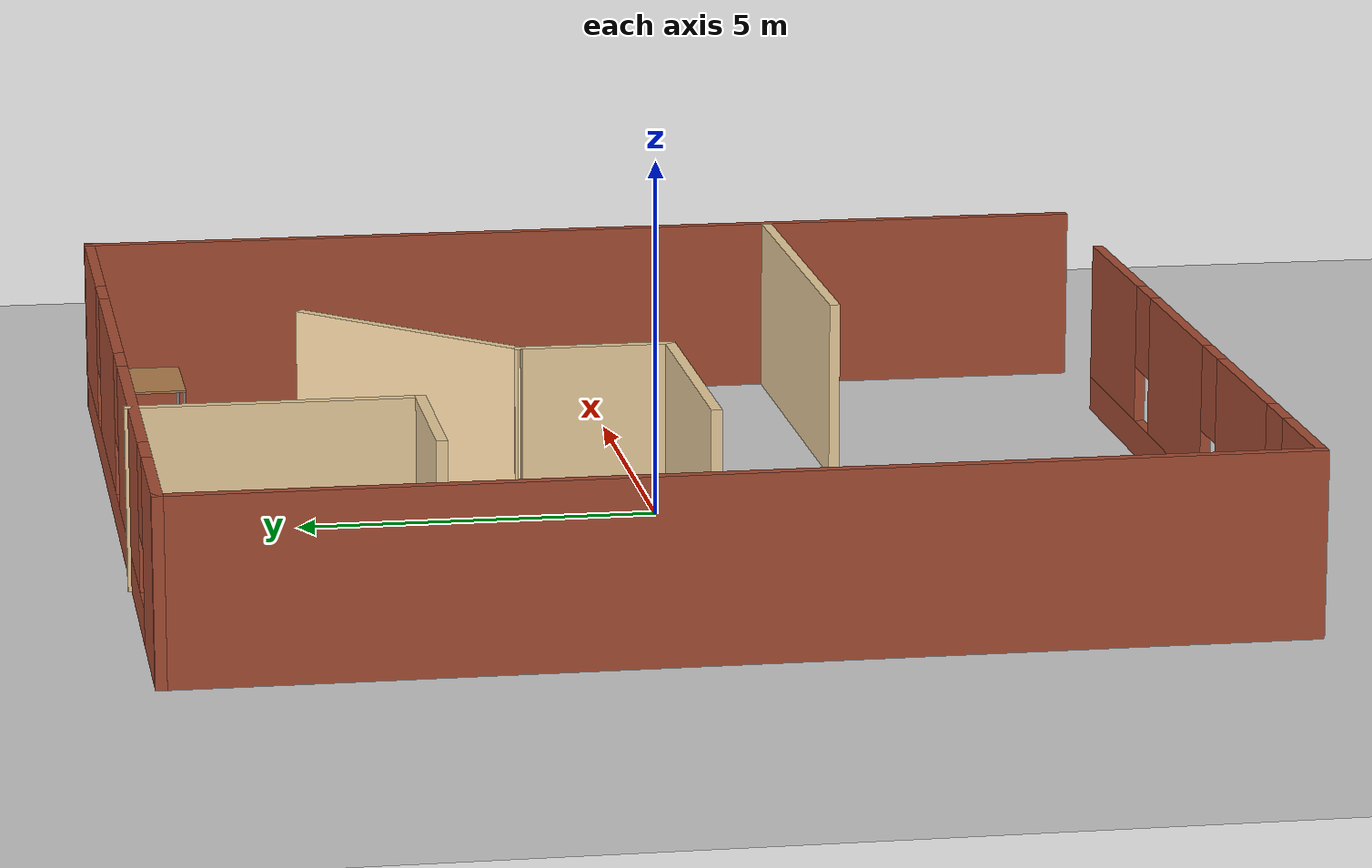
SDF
<sdf version="1.7">
 <world name="default">
  <model name="ground_plane">
   <static>1</static>
   <link name="link">
    <collision name="collision">
     <geometry><plane><normal>0 0 1</normal><size>100 100</size></plane></geometry>
     <surface>
      <contact><collide_bitmask>65535</collide_bitmask></contact>
      <friction><ode><mu>100</mu><mu2>50</mu2></ode></friction>
     </surface>
    </collision>
    <visual name="visual">
     <cast_shadows>0</cast_shadows>
     <geometry><plane><normal>0 0 1</normal><size>100 100</size></plane></geometry>
     <material>
      <script><uri>file://media/materials/scripts/gazebo.material</uri><name>Gazebo/Grey</name></script>
     </material>
    </visual>
   </link>
  </model>
  <model name="gMaze3">
   <link name="Wall_0">
    <pose>0 7.40084 0 0 -0 0</pose>
    <visual name="Wall_0_Visual_0">
     <pose>-6.50945 0 1.25 0 -0 0</pose>
     <geometry><box><size>1.98109 0.15 2.5</size></box></geometry>
     <material>
      <script><uri>file://media/materials/scripts/gazebo.material</uri><name>Gazebo/Bricks</name></script>
      <ambient>1 1 1 1</ambient>
     </material>
     <meta><layer>0</layer></meta>
    </visual>
    <collision name="Wall_0_Collision_0">
     <geometry><box><size>1.98109 0.15 2.5</size></box></geometry>
     <pose>-6.50945 0 1.25 0 -0 0</pose>
    </collision>
    <visual name="Wall_0_Visual_1">
     <pose>0.990545 0 0.25 0 -0 0</pose>
     <geometry><box><size>13.0189 0.15 0.5</size></box></geometry>
     <material>
      <script><uri>file://media/materials/scripts/gazebo.material</uri><name>Gazebo/Bricks</name></script>
      <ambient>1 1 1 1</ambient>
     </material>
     <meta><layer>0</layer></meta>
    </visual>
    <collision name="Wall_0_Collision_1">
     <geometry><box><size>13.0189 0.15 0.5</size></box></geometry>
     <pose>0.990545 0 0.25 0 -0 0</pose>
    </collision>
    <visual name="Wall_0_Visual_2">
     <pose>-2.60363 0 1.5 0 -0 0</pose>
     <geometry><box><size>4.23056 0.15 2</size></box></geometry>
     <material>
      <script><uri>file://media/materials/scripts/gazebo.material</uri><name>Gazebo/Bricks</name></script>
      <ambient>1 1 1 1</ambient>
     </material>
     <meta><layer>0</layer></meta>
    </visual>
    <collision name="Wall_0_Collision_2">
     <geometry><box><size>4.23056 0.15 2</size></box></geometry>
     <pose>-2.60363 0 1.5 0 -0 0</pose>
    </collision>
    <visual name="Wall_0_Visual_3">
     <pose>2.02238 0 1.5 0 -0 0</pose>
     <geometry><box><size>3.42145 0.15 2</size></box></geometry>
     <material>
      <script><uri>file://media/materials/scripts/gazebo.material</uri><name>Gazebo/Bricks</name></script>
      <ambient>1 1 1 1</ambient>
     </material>
     <meta><layer>0</layer></meta>
    </visual>
    <collision name="Wall_0_Collision_3">
     <geometry><box><size>3.42145 0.15 2</size></box></geometry>
     <pose>2.02238 0 1.5 0 -0 0</pose>
    </collision>
    <visual name="Wall_0_Visual_4">
     <pose>6.01655 0 1.5 0 -0 0</pose>
     <geometry><box><size>2.9669 0.15 2</size></box></geometry>
     <material>
      <script><uri>file://media/materials/scripts/gazebo.material</uri><name>Gazebo/Bricks</name></script>
      <ambient>1 1 1 1</ambient>
     </material>
     <meta><layer>0</layer></meta>
    </visual>
    <collision name="Wall_0_Collision_4">
     <geometry><box><size>2.9669 0.15 2</size></box></geometry>
     <pose>6.01655 0 1.5 0 -0 0</pose>
    </collision>
    <visual name="Wall_0_Visual_5">
     <pose>-5.11891 0 1.9 0 -0 0</pose>
     <geometry><box><size>0.8 0.15 1.2</size></box></geometry>
     <material>
      <script><uri>file://media/materials/scripts/gazebo.material</uri><name>Gazebo/Bricks</name></script>
      <ambient>1 1 1 1</ambient>
     </material>
     <meta><layer>0</layer></meta>
    </visual>
    <collision name="Wall_0_Collision_5">
     <geometry><box><size>0.8 0.15 1.2</size></box></geometry>
     <pose>-5.11891 0 1.9 0 -0 0</pose>
    </collision>
    <visual name="Wall_0_Visual_6">
     <pose>-0.088347 0 1.9 0 -0 0</pose>
     <geometry><box><size>0.8 0.15 1.2</size></box></geometry>
     <material>
      <script><uri>file://media/materials/scripts/gazebo.material</uri><name>Gazebo/Bricks</name></script>
      <ambient>1 1 1 1</ambient>
     </material>
     <meta><layer>0</layer></meta>
    </visual>
    <collision name="Wall_0_Collision_6">
     <geometry><box><size>0.8 0.15 1.2</size></box></geometry>
     <pose>-0.088347 0 1.9 0 -0 0</pose>
    </collision>
    <visual name="Wall_0_Visual_7">
     <pose>4.1331 0 1.9 0 -0 0</pose>
     <geometry><box><size>0.8 0.15 1.2</size></box></geometry>
     <material>
      <script><uri>file://media/materials/scripts/gazebo.material</uri><name>Gazebo/Bricks</name></script>
      <ambient>1 1 1 1</ambient>
     </material>
     <meta><layer>0</layer></meta>
    </visual>
    <collision name="Wall_0_Collision_7">
     <geometry><box><size>0.8 0.15 1.2</size></box></geometry>
     <pose>4.1331 0 1.9 0 -0 0</pose>
    </collision>
   </link>
   <link name="Wall_1">
    <collision name="Wall_1_Collision">
     <geometry><box><size>15 0.15 2.5</size></box></geometry>
     <pose>0 0 1.25 0 -0 0</pose>
    </collision>
    <visual name="Wall_1_Visual">
     <pose>0 0 1.25 0 -0 0</pose>
     <geometry><box><size>15 0.15 2.5</size></box></geometry>
     <material>
      <script><uri>file://media/materials/scripts/gazebo.material</uri><name>Gazebo/Bricks</name></script>
      <ambient>1 1 1 1</ambient>
     </material>
     <meta><layer>0</layer></meta>
    </visual>
    <pose>7.40489 -0.024156 0 0 -0 -1.5708</pose>
   </link>
   <link name="Wall_17">
    <collision name="Wall_17_Collision">
     <geometry><box><size>5.75 0.15 2.5</size></box></geometry>
     <pose>0 0 1.25 0 -0 0</pose>
    </collision>
    <visual name="Wall_17_Visual">
     <pose>0 0 1.25 0 -0 0</pose>
     <geometry><box><size>5.75 0.15 2.5</size></box></geometry>
     <material>
      <script><uri>file://media/materials/scripts/gazebo.material</uri><name>Gazebo/Grey</name></script>
      <ambient>0.921569 0.807843 0.615686 1</ambient>
     </material>
     <meta><layer>0</layer></meta>
    </visual>
    <pose>4.59033 -2.84512 0 0 -0 3.14159</pose>
   </link>
   <link name="Wall_19">
    <collision name="Wall_19_Collision">
     <geometry><box><size>4 0.15 2.5</size></box></geometry>
     <pose>0 0 1.25 0 -0 0</pose>
    </collision>
    <visual name="Wall_19_Visual">
     <pose>0 0 1.25 0 -0 0</pose>
     <geometry><box><size>4 0.15 2.5</size></box></geometry>
     <material>
      <script><uri>file://media/materials/scripts/gazebo.material</uri><name>Gazebo/Grey</name></script>
      <ambient>0.921569 0.807843 0.615686 1</ambient>
     </material>
     <meta><layer>0</layer></meta>
    </visual>
    <pose>-2.17595 -0.158501 0 0 -0 0</pose>
   </link>
   <link name="Wall_20">
    <collision name="Wall_20_Collision">
     <geometry><box><size>2.25 0.15 2.5</size></box></geometry>
     <pose>0 0 1.25 0 -0 0</pose>
    </collision>
    <visual name="Wall_20_Visual">
     <pose>0 0 1.25 0 -0 0</pose>
     <geometry><box><size>2.25 0.15 2.5</size></box></geometry>
     <material>
      <script><uri>file://media/materials/scripts/gazebo.material</uri><name>Gazebo/Grey</name></script>
      <ambient>0.921569 0.807843 0.615686 1</ambient>
     </material>
     <meta><layer>0</layer></meta>
    </visual>
    <pose>-0.250951 0.891499 0 0 -0 1.5708</pose>
   </link>
   <link name="Wall_21">
    <collision name="Wall_21_Collision">
     <geometry><box><size>4 0.15 2.5</size></box></geometry>
     <pose>0 0 1.25 0 -0 0</pose>
    </collision>
    <visual name="Wall_21_Visual">
     <pose>0 0 1.25 0 -0 0</pose>
     <geometry><box><size>4 0.15 2.5</size></box></geometry>
     <material>
      <script><uri>file://media/materials/scripts/gazebo.material</uri><name>Gazebo/Grey</name></script>
      <ambient>0.921569 0.807843 0.615686 1</ambient>
     </material>
     <meta><layer>0</layer></meta>
    </visual>
    <pose>1.11023 3.30268 0 0 -0 0.785398</pose>
   </link>
   <link name="Wall_23">
    <collision name="Wall_23_Collision">
     <geometry><box><size>4 0.15 2.5</size></box></geometry>
     <pose>0 0 1.25 0 -0 0</pose>
    </collision>
    <visual name="Wall_23_Visual">
     <pose>0 0 1.25 0 -0 0</pose>
     <geometry><box><size>4 0.15 2.5</size></box></geometry>
     <material>
      <script><uri>file://media/materials/scripts/gazebo.material</uri><name>Gazebo/Grey</name></script>
      <ambient>0.921569 0.807843 0.615686 1</ambient>
     </material>
     <meta><layer>0</layer></meta>
    </visual>
    <pose>-2.82414 5.52416 0 0 -0 -1.5708</pose>
   </link>
   <link name="Wall_24">
    <collision name="Wall_24_Collision">
     <geometry><box><size>2.5 0.15 2.5</size></box></geometry>
     <pose>0 0 1.25 0 -0 0</pose>
    </collision>
    <visual name="Wall_24_Visual">
     <pose>0 0 1.25 0 -0 0</pose>
     <geometry><box><size>2.5 0.15 2.5</size></box></geometry>
     <material>
      <script><uri>file://media/materials/scripts/gazebo.material</uri><name>Gazebo/Grey</name></script>
      <ambient>0.921569 0.807843 0.615686 1</ambient>
     </material>
     <meta><layer>0</layer></meta>
    </visual>
    <pose>-3.99914 3.59916 0 0 -0 3.14159</pose>
   </link>
   <link name="Wall_3">
    <collision name="Wall_3_Collision">
     <geometry><box><size>15 0.15 2.5</size></box></geometry>
     <pose>0 0 1.25 0 -0 0</pose>
    </collision>
    <visual name="Wall_3_Visual">
     <pose>0 0 1.25 0 -0 0</pose>
     <geometry><box><size>15 0.15 2.5</size></box></geometry>
     <material>
      <script><uri>file://media/materials/scripts/gazebo.material</uri><name>Gazebo/Bricks</name></script>
      <ambient>1 1 1 1</ambient>
     </material>
     <meta><layer>0</layer></meta>
    </visual>
    <pose>-7.425 -0.024156 0 0 -0 -1.5708</pose>
   </link>
   <link name="Wall_4">
    <pose>-1.25 -7.44916 0 0 -0 0</pose>
    <visual name="Wall_4_Visual_0">
     <pose>-5.37558 0 1.25 0 -0 0</pose>
     <geometry><box><size>1.74884 0.15 2.5</size></box></geometry>
     <material>
      <script><uri>file://media/materials/scripts/gazebo.material</uri><name>Gazebo/Bricks</name></script>
      <ambient>1 1 1 1</ambient>
     </material>
     <meta><layer>0</layer></meta>
    </visual>
    <collision name="Wall_4_Collision_0">
     <geometry><box><size>1.74884 0.15 2.5</size></box></geometry>
     <pose>-5.37558 0 1.25 0 -0 0</pose>
    </collision>
    <visual name="Wall_4_Visual_1">
     <pose>0.87442 0 0.25 0 -0 0</pose>
     <geometry><box><size>10.7512 0.15 0.5</size></box></geometry>
     <material>
      <script><uri>file://media/materials/scripts/gazebo.material</uri><name>Gazebo/Bricks</name></script>
      <ambient>1 1 1 1</ambient>
     </material>
     <meta><layer>0</layer></meta>
    </visual>
    <collision name="Wall_4_Collision_1">
     <geometry><box><size>10.7512 0.15 0.5</size></box></geometry>
     <pose>0.87442 0 0.25 0 -0 0</pose>
    </collision>
    <visual name="Wall_4_Visual_2">
     <pose>-2.40199 0 1.5 0 -0 0</pose>
     <geometry><box><size>2.59834 0.15 2</size></box></geometry>
     <material>
      <script><uri>file://media/materials/scripts/gazebo.material</uri><name>Gazebo/Bricks</name></script>
      <ambient>1 1 1 1</ambient>
     </material>
     <meta><layer>0</layer></meta>
    </visual>
    <collision name="Wall_4_Collision_2">
     <geometry><box><size>2.59834 0.15 2</size></box></geometry>
     <pose>-2.40199 0 1.5 0 -0 0</pose>
    </collision>
    <visual name="Wall_4_Visual_3">
     <pose>1.19683 0 1.5 0 -0 0</pose>
     <geometry><box><size>2.99931 0.15 2</size></box></geometry>
     <material>
      <script><uri>file://media/materials/scripts/gazebo.material</uri><name>Gazebo/Bricks</name></script>
      <ambient>1 1 1 1</ambient>
     </material>
     <meta><layer>0</layer></meta>
    </visual>
    <collision name="Wall_4_Collision_3">
     <geometry><box><size>2.99931 0.15 2</size></box></geometry>
     <pose>1.19683 0 1.5 0 -0 0</pose>
    </collision>
    <visual name="Wall_4_Visual_4">
     <pose>4.87324 0 1.5 0 -0 0</pose>
     <geometry><box><size>2.75352 0.15 2</size></box></geometry>
     <material>
      <script><uri>file://media/materials/scripts/gazebo.material</uri><name>Gazebo/Bricks</name></script>
      <ambient>1 1 1 1</ambient>
     </material>
     <meta><layer>0</layer></meta>
    </visual>
    <collision name="Wall_4_Collision_4">
     <geometry><box><size>2.75352 0.15 2</size></box></geometry>
     <pose>4.87324 0 1.5 0 -0 0</pose>
    </collision>
    <visual name="Wall_4_Visual_5">
     <pose>-4.10116 0 1.9 0 -0 0</pose>
     <geometry><box><size>0.8 0.15 1.2</size></box></geometry>
     <material>
      <script><uri>file://media/materials/scripts/gazebo.material</uri><name>Gazebo/Bricks</name></script>
      <ambient>1 1 1 1</ambient>
     </material>
     <meta><layer>0</layer></meta>
    </visual>
    <collision name="Wall_4_Collision_5">
     <geometry><box><size>0.8 0.15 1.2</size></box></geometry>
     <pose>-4.10116 0 1.9 0 -0 0</pose>
    </collision>
    <visual name="Wall_4_Visual_6">
     <pose>-0.702821 0 1.9 0 -0 0</pose>
     <geometry><box><size>0.8 0.15 1.2</size></box></geometry>
     <material>
      <script><uri>file://media/materials/scripts/gazebo.material</uri><name>Gazebo/Bricks</name></script>
      <ambient>1 1 1 1</ambient>
     </material>
     <meta><layer>0</layer></meta>
    </visual>
    <collision name="Wall_4_Collision_6">
     <geometry><box><size>0.8 0.15 1.2</size></box></geometry>
     <pose>-0.702821 0 1.9 0 -0 0</pose>
    </collision>
    <visual name="Wall_4_Visual_7">
     <pose>3.09648 0 1.9 0 -0 0</pose>
     <geometry><box><size>0.8 0.15 1.2</size></box></geometry>
     <material>
      <script><uri>file://media/materials/scripts/gazebo.material</uri><name>Gazebo/Bricks</name></script>
      <ambient>1 1 1 1</ambient>
     </material>
     <meta><layer>0</layer></meta>
    </visual>
    <collision name="Wall_4_Collision_7">
     <geometry><box><size>0.8 0.15 1.2</size></box></geometry>
     <pose>3.09648 0 1.9 0 -0 0</pose>
    </collision>
   </link>
   <static>1</static>
  </model>
  <model name="bookshelf_1">
   <static>1</static>
   <link name="link">
    <inertial><mass>1</mass></inertial>
    <collision name="back">
     <pose>0 0.005 0.6 0 -0 0</pose>
     <geometry><box><size>0.9 0.01 1.2</size></box></geometry>
    </collision>
    <visual name="visual1">
     <pose>0 0.005 0.6 0 -0 0</pose>
     <geometry><box><size>0.9 0.01 1.2</size></box></geometry>
     <material>
      <script><uri>file://media/materials/scripts/gazebo.material</uri><name>Gazebo/Wood</name></script>
     </material>
    </visual>
    <collision name="left_side">
     <pose>0.45 -0.195 0.6 0 -0 0</pose>
     <geometry><box><size>0.02 0.4 1.2</size></box></geometry>
    </collision>
    <visual name="visual2">
     <pose>0.45 -0.195 0.6 0 -0 0</pose>
     <geometry><box><size>0.02 0.4 1.2</size></box></geometry>
     <material>
      <script><uri>file://media/materials/scripts/gazebo.material</uri><name>Gazebo/Wood</name></script>
     </material>
    </visual>
    <collision name="right_side">
     <pose>-0.45 -0.195 0.6 0 -0 0</pose>
     <geometry><box><size>0.02 0.4 1.2</size></box></geometry>
    </collision>
    <visual name="visual3">
     <pose>-0.45 -0.195 0.6 0 -0 0</pose>
     <geometry><box><size>0.02 0.4 1.2</size></box></geometry>
     <material>
      <script><uri>file://media/materials/scripts/gazebo.material</uri><name>Gazebo/Wood</name></script>
     </material>
    </visual>
    <collision name="bottom">
     <pose>0 -0.195 0.03 0 -0 0</pose>
     <geometry><box><size>0.88 0.4 0.06</size></box></geometry>
    </collision>
    <visual name="visual4">
     <pose>0 -0.195 0.03 0 -0 0</pose>
     <geometry><box><size>0.88 0.4 0.06</size></box></geometry>
     <material>
      <script><uri>file://media/materials/scripts/gazebo.material</uri><name>Gazebo/Wood</name></script>
     </material>
    </visual>
    <collision name="top">
     <pose>0 -0.195 1.19 0 -0 0</pose>
     <geometry><box><size>0.88 0.4 0.02</size></box></geometry>
    </collision>
    <visual name="visual5">
     <pose>0 -0.195 1.19 0 -0 0</pose>
     <geometry><box><size>0.88 0.4 0.02</size></box></geometry>
     <material>
      <script><uri>file://media/materials/scripts/gazebo.material</uri><name>Gazebo/Wood</name></script>
     </material>
    </visual>
    <collision name="low_shelf">
     <pose>0 -0.195 0.43 0 -0 0</pose>
     <geometry><box><size>0.88 0.4 0.02</size></box></geometry>
    </collision>
    <visual name="visual6">
     <pose>0 -0.195 0.43 0 -0 0</pose>
     <geometry><box><size>0.88 0.4 0.02</size></box></geometry>
     <material>
      <script><uri>file://media/materials/scripts/gazebo.material</uri><name>Gazebo/Wood</name></script>
     </material>
    </visual>
    <collision name="high_shelf">
     <pose>0 -0.195 0.8 0 -0 0</pose>
     <geometry><box><size>0.88 0.4 0.02</size></box></geometry>
    </collision>
    <visual name="visual7">
     <pose>0 -0.195 0.8 0 -0 0</pose>
     <geometry><box><size>0.88 0.4 0.02</size></box></geometry>
     <material>
      <script><uri>file://media/materials/scripts/gazebo.material</uri><name>Gazebo/Wood</name></script>
     </material>
    </visual>
   </link>
   <pose>-6.64566 -3.80059 0 0 -0 0</pose>
  </model>
  <model name="bookshelf_2">
   <static>1</static>
   <link name="link">
    <inertial><mass>1</mass></inertial>
    <collision name="back">
     <pose>0 0.005 0.6 0 -0 0</pose>
     <geometry><box><size>0.9 0.01 1.2</size></box></geometry>
    </collision>
    <visual name="visual1">
     <pose>0 0.005 0.6 0 -0 0</pose>
     <geometry><box><size>0.9 0.01 1.2</size></box></geometry>
     <material>
      <script><uri>file://media/materials/scripts/gazebo.material</uri><name>Gazebo/Wood</name></script>
     </material>
    </visual>
    <collision name="left_side">
     <pose>0.45 -0.195 0.6 0 -0 0</pose>
     <geometry><box><size>0.02 0.4 1.2</size></box></geometry>
    </collision>
    <visual name="visual2">
     <pose>0.45 -0.195 0.6 0 -0 0</pose>
     <geometry><box><size>0.02 0.4 1.2</size></box></geometry>
     <material>
      <script><uri>file://media/materials/scripts/gazebo.material</uri><name>Gazebo/Wood</name></script>
     </material>
    </visual>
    <collision name="right_side">
     <pose>-0.45 -0.195 0.6 0 -0 0</pose>
     <geometry><box><size>0.02 0.4 1.2</size></box></geometry>
    </collision>
    <visual name="visual3">
     <pose>-0.45 -0.195 0.6 0 -0 0</pose>
     <geometry><box><size>0.02 0.4 1.2</size></box></geometry>
     <material>
      <script><uri>file://media/materials/scripts/gazebo.material</uri><name>Gazebo/Wood</name></script>
     </material>
    </visual>
    <collision name="bottom">
     <pose>0 -0.195 0.03 0 -0 0</pose>
     <geometry><box><size>0.88 0.4 0.06</size></box></geometry>
    </collision>
    <visual name="visual4">
     <pose>0 -0.195 0.03 0 -0 0</pose>
     <geometry><box><size>0.88 0.4 0.06</size></box></geometry>
     <material>
      <script><uri>file://media/materials/scripts/gazebo.material</uri><name>Gazebo/Wood</name></script>
     </material>
    </visual>
    <collision name="top">
     <pose>0 -0.195 1.19 0 -0 0</pose>
     <geometry><box><size>0.88 0.4 0.02</size></box></geometry>
    </collision>
    <visual name="visual5">
     <pose>0 -0.195 1.19 0 -0 0</pose>
     <geometry><box><size>0.88 0.4 0.02</size></box></geometry>
     <material>
      <script><uri>file://media/materials/scripts/gazebo.material</uri><name>Gazebo/Wood</name></script>
     </material>
    </visual>
    <collision name="low_shelf">
     <pose>0 -0.195 0.43 0 -0 0</pose>
     <geometry><box><size>0.88 0.4 0.02</size></box></geometry>
    </collision>
    <visual name="visual6">
     <pose>0 -0.195 0.43 0 -0 0</pose>
     <geometry><box><size>0.88 0.4 0.02</size></box></geometry>
     <material>
      <script><uri>file://media/materials/scripts/gazebo.material</uri><name>Gazebo/Wood</name></script>
     </material>
    </visual>
    <collision name="high_shelf">
     <pose>0 -0.195 0.8 0 -0 0</pose>
     <geometry><box><size>0.88 0.4 0.02</size></box></geometry>
    </collision>
    <visual name="visual7">
     <pose>0 -0.195 0.8 0 -0 0</pose>
     <geometry><box><size>0.88 0.4 0.02</size></box></geometry>
     <material>
      <script><uri>file://media/materials/scripts/gazebo.material</uri><name>Gazebo/Wood</name></script>
     </material>
    </visual>
   </link>
   <pose>-5.34282 -3.81782 0.088746 -1.57259 0 0</pose>
  </model>
  <model name="table">
   <static>1</static>
   <link name="link">
    <collision name="surface">
     <pose>0 0 1 0 -0 0</pose>
     <geometry><box><size>1.5 0.8 0.03</size></box></geometry>
     <surface><friction><ode><mu>0.6</mu><mu2>0.6</mu2></ode></friction></surface>
    </collision>
    <visual name="visual1">
     <pose>0 0 1 0 -0 0</pose>
     <geometry><box><size>1.5 0.8 0.03</size></box></geometry>
     <material>
      <script><uri>file://media/materials/scripts/gazebo.material</uri><name>Gazebo/Wood</name></script>
     </material>
    </visual>
    <collision name="front_left_leg">
     <pose>0.68 0.38 0.5 0 -0 0</pose>
     <geometry><cylinder><radius>0.02</radius><length>1</length></cylinder></geometry>
    </collision>
    <visual name="front_left_leg">
     <pose>0.68 0.38 0.5 0 -0 0</pose>
     <geometry><cylinder><radius>0.02</radius><length>1</length></cylinder></geometry>
     <material>
      <script><uri>file://media/materials/scripts/gazebo.material</uri><name>Gazebo/Grey</name></script>
     </material>
    </visual>
    <collision name="front_right_leg">
     <pose>0.68 -0.38 0.5 0 -0 0</pose>
     <geometry><cylinder><radius>0.02</radius><length>1</length></cylinder></geometry>
    </collision>
    <visual name="front_right_leg">
     <pose>0.68 -0.38 0.5 0 -0 0</pose>
     <geometry><cylinder><radius>0.02</radius><length>1</length></cylinder></geometry>
     <material>
      <script><uri>file://media/materials/scripts/gazebo.material</uri><name>Gazebo/Grey</name></script>
     </material>
    </visual>
    <collision name="back_right_leg">
     <pose>-0.68 -0.38 0.5 0 -0 0</pose>
     <geometry><cylinder><radius>0.02</radius><length>1</length></cylinder></geometry>
    </collision>
    <visual name="back_right_leg">
     <pose>-0.68 -0.38 0.5 0 -0 0</pose>
     <geometry><cylinder><radius>0.02</radius><length>1</length></cylinder></geometry>
     <material>
      <script><uri>file://media/materials/scripts/gazebo.material</uri><name>Gazebo/Grey</name></script>
     </material>
    </visual>
    <collision name="back_left_leg">
     <pose>-0.68 0.38 0.5 0 -0 0</pose>
     <geometry><cylinder><radius>0.02</radius><length>1</length></cylinder></geometry>
    </collision>
    <visual name="back_left_leg">
     <pose>-0.68 0.38 0.5 0 -0 0</pose>
     <geometry><cylinder><radius>0.02</radius><length>1</length></cylinder></geometry>
     <material>
      <script><uri>file://media/materials/scripts/gazebo.material</uri><name>Gazebo/Grey</name></script>
     </material>
    </visual>
   </link>
   <pose>4.84378 6.63121 0 0 -0 0</pose>
  </model>
 </world>
</sdf>
